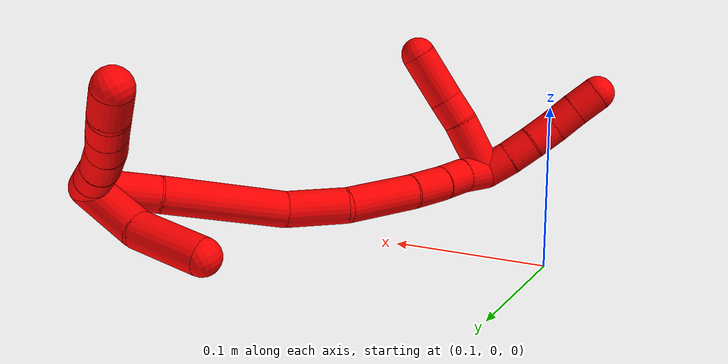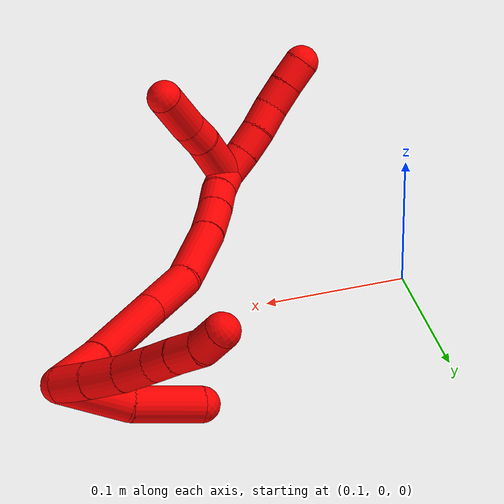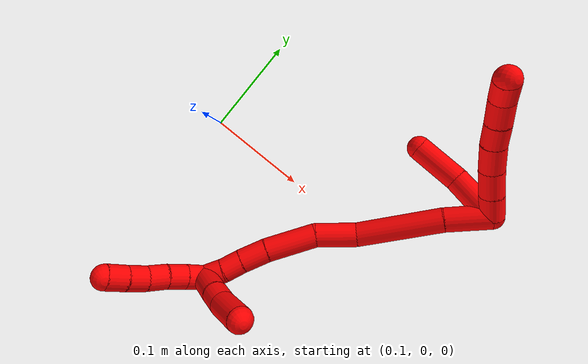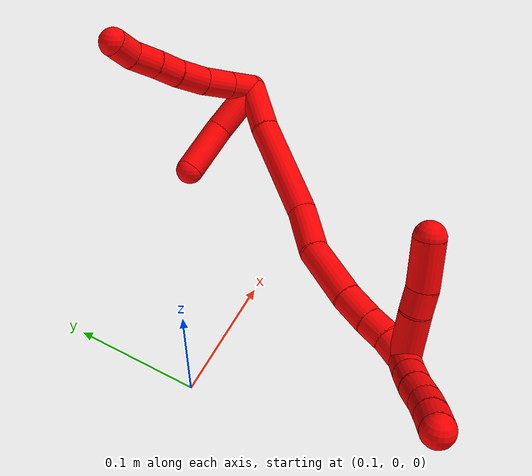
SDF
<sdf version="1.7">
 <world name="default">
  <model name="2">
   <static>0</static>
   <link name="2">
    <collision name="collision-cylinder-e_1_2_8">
     <pose>0.012391 -0.001172 -0.002377 2.68338 1.36007 2.58011</pose>
     <geometry><cylinder><radius>0.0125</radius><length>0.025342</length></cylinder></geometry>
     <surface>
      <friction><ode><mu>1.16</mu><mu2>1.16</mu2><slip1>0</slip1><slip2>0</slip2></ode></friction>
      <contact><ode><kp>1e+06</kp><kd>1</kd><max_vel>0</max_vel><min_depth>0.001</min_depth></ode></contact>
     </surface>
    </collision>
    <visual name="visual-cylinder-e_1_2_8">
     <pose>0.012391 -0.001172 -0.002377 2.68338 1.36007 2.58011</pose>
     <geometry><cylinder><radius>0.0125</radius><length>0.025342</length></cylinder></geometry>
     <material><ambient>1 0 0 1</ambient></material>
    </visual>
    <collision name="collision-cylinder-e_2_8_9">
     <pose>0.038326 -0.003983 -0.007566 2.61416 1.33503 2.48155</pose>
     <geometry><cylinder><radius>0.0125</radius><length>0.027861</length></cylinder></geometry>
     <surface>
      <friction><ode><mu>1.16</mu><mu2>1.16</mu2><slip1>0</slip1><slip2>0</slip2></ode></friction>
      <contact><ode><kp>1e+06</kp><kd>1</kd><max_vel>0</max_vel><min_depth>0.001</min_depth></ode></contact>
     </surface>
    </collision>
    <visual name="visual-cylinder-e_2_8_9">
     <pose>0.038326 -0.003983 -0.007566 2.61416 1.33503 2.48155</pose>
     <geometry><cylinder><radius>0.0125</radius><length>0.027861</length></cylinder></geometry>
     <material><ambient>1 0 0 1</ambient></material>
    </visual>
    <collision name="collision-cylinder-e_3_9_10">
     <pose>0.064982 -0.007592 -0.014833 2.72485 1.21501 2.5511</pose>
     <geometry><cylinder><radius>0.0125</radius><length>0.027974</length></cylinder></geometry>
     <surface>
      <friction><ode><mu>1.16</mu><mu2>1.16</mu2><slip1>0</slip1><slip2>0</slip2></ode></friction>
      <contact><ode><kp>1e+06</kp><kd>1</kd><max_vel>0</max_vel><min_depth>0.001</min_depth></ode></contact>
     </surface>
    </collision>
    <visual name="visual-cylinder-e_3_9_10">
     <pose>0.064982 -0.007592 -0.014833 2.72485 1.21501 2.5511</pose>
     <geometry><cylinder><radius>0.0125</radius><length>0.027974</length></cylinder></geometry>
     <material><ambient>1 0 0 1</ambient></material>
    </visual>
    <collision name="collision-cylinder-e_4_10_11">
     <pose>0.088242 -0.010436 -0.02378 2.94995 1.14721 2.84622</pose>
     <geometry><cylinder><radius>0.0125</radius><length>0.022266</length></cylinder></geometry>
     <surface>
      <friction><ode><mu>1.16</mu><mu2>1.16</mu2><slip1>0</slip1><slip2>0</slip2></ode></friction>
      <contact><ode><kp>1e+06</kp><kd>1</kd><max_vel>0</max_vel><min_depth>0.001</min_depth></ode></contact>
     </surface>
    </collision>
    <visual name="visual-cylinder-e_4_10_11">
     <pose>0.088242 -0.010436 -0.02378 2.94995 1.14721 2.84622</pose>
     <geometry><cylinder><radius>0.0125</radius><length>0.022266</length></cylinder></geometry>
     <material><ambient>1 0 0 1</ambient></material>
    </visual>
    <collision name="collision-cylinder-e_5_11_12">
     <pose>0.109671 -0.012162 -0.032648 2.94887 1.19439 2.8592</pose>
     <geometry><cylinder><radius>0.0125</radius><length>0.024259</length></cylinder></geometry>
     <surface>
      <friction><ode><mu>1.16</mu><mu2>1.16</mu2><slip1>0</slip1><slip2>0</slip2></ode></friction>
      <contact><ode><kp>1e+06</kp><kd>1</kd><max_vel>0</max_vel><min_depth>0.001</min_depth></ode></contact>
     </surface>
    </collision>
    <visual name="visual-cylinder-e_5_11_12">
     <pose>0.109671 -0.012162 -0.032648 2.94887 1.19439 2.8592</pose>
     <geometry><cylinder><radius>0.0125</radius><length>0.024259</length></cylinder></geometry>
     <material><ambient>1 0 0 1</ambient></material>
    </visual>
    <collision name="collision-cylinder-e_6_12_6">
     <pose>0.129773 -0.015797 -0.04325 2.72143 0.912688 2.32206</pose>
     <geometry><cylinder><radius>0.0125</radius><length>0.022299</length></cylinder></geometry>
     <surface>
      <friction><ode><mu>1.16</mu><mu2>1.16</mu2><slip1>0</slip1><slip2>0</slip2></ode></friction>
      <contact><ode><kp>1e+06</kp><kd>1</kd><max_vel>0</max_vel><min_depth>0.001</min_depth></ode></contact>
     </surface>
    </collision>
    <visual name="visual-cylinder-e_6_12_6">
     <pose>0.129773 -0.015797 -0.04325 2.72143 0.912688 2.32206</pose>
     <geometry><cylinder><radius>0.0125</radius><length>0.022299</length></cylinder></geometry>
     <material><ambient>1 0 0 1</ambient></material>
    </visual>
    <collision name="collision-cylinder-e_1_2_13">
     <pose>0.0173 -0.005052 0.017713 0.277816 0.754083 0.110611</pose>
     <geometry><cylinder><radius>0.0125</radius><length>0.05054</length></cylinder></geometry>
     <surface>
      <friction><ode><mu>1.16</mu><mu2>1.16</mu2><slip1>0</slip1><slip2>0</slip2></ode></friction>
      <contact><ode><kp>1e+06</kp><kd>1</kd><max_vel>0</max_vel><min_depth>0.001</min_depth></ode></contact>
     </surface>
    </collision>
    <visual name="visual-cylinder-e_1_2_13">
     <pose>0.0173 -0.005052 0.017713 0.277816 0.754083 0.110611</pose>
     <geometry><cylinder><radius>0.0125</radius><length>0.05054</length></cylinder></geometry>
     <material><ambient>1 0 0 1</ambient></material>
    </visual>
    <collision name="collision-cylinder-e_2_13_5">
     <pose>0.051572 -0.020506 0.050101 0.61667 0.756319 0.251724</pose>
     <geometry><cylinder><radius>0.0125</radius><length>0.04946</length></cylinder></geometry>
     <surface>
      <friction><ode><mu>1.16</mu><mu2>1.16</mu2><slip1>0</slip1><slip2>0</slip2></ode></friction>
      <contact><ode><kp>1e+06</kp><kd>1</kd><max_vel>0</max_vel><min_depth>0.001</min_depth></ode></contact>
     </surface>
    </collision>
    <visual name="visual-cylinder-e_2_13_5">
     <pose>0.051572 -0.020506 0.050101 0.61667 0.756319 0.251724</pose>
     <geometry><cylinder><radius>0.0125</radius><length>0.04946</length></cylinder></geometry>
     <material><ambient>1 0 0 1</ambient></material>
    </visual>
    <collision name="collision-cylinder-e_1_2_14">
     <pose>0.000491 -0.019001 0.01311 0.966835 0.021269 0.011166</pose>
     <geometry><cylinder><radius>0.0125</radius><length>0.04618</length></cylinder></geometry>
     <surface>
      <friction><ode><mu>1.16</mu><mu2>1.16</mu2><slip1>0</slip1><slip2>0</slip2></ode></friction>
      <contact><ode><kp>1e+06</kp><kd>1</kd><max_vel>0</max_vel><min_depth>0.001</min_depth></ode></contact>
     </surface>
    </collision>
    <visual name="visual-cylinder-e_1_2_14">
     <pose>0.000491 -0.019001 0.01311 0.966835 0.021269 0.011166</pose>
     <geometry><cylinder><radius>0.0125</radius><length>0.04618</length></cylinder></geometry>
     <material><ambient>1 0 0 1</ambient></material>
    </visual>
    <collision name="collision-cylinder-e_2_14_15">
     <pose>-0.003316 -0.074023 0.051841 0.95254 -0.096925 -0.05003</pose>
     <geometry><cylinder><radius>0.0125</radius><length>0.088823</length></cylinder></geometry>
     <surface>
      <friction><ode><mu>1.16</mu><mu2>1.16</mu2><slip1>0</slip1><slip2>0</slip2></ode></friction>
      <contact><ode><kp>1e+06</kp><kd>1</kd><max_vel>0</max_vel><min_depth>0.001</min_depth></ode></contact>
     </surface>
    </collision>
    <visual name="visual-cylinder-e_2_14_15">
     <pose>-0.003316 -0.074023 0.051841 0.95254 -0.096925 -0.05003</pose>
     <geometry><cylinder><radius>0.0125</radius><length>0.088823</length></cylinder></geometry>
     <material><ambient>1 0 0 1</ambient></material>
    </visual>
    <collision name="collision-cylinder-e_3_15_16">
     <pose>-0.004582 -0.129354 0.086522 1.13211 0.141184 0.0898</pose>
     <geometry><cylinder><radius>0.0125</radius><length>0.043089</length></cylinder></geometry>
     <surface>
      <friction><ode><mu>1.16</mu><mu2>1.16</mu2><slip1>0</slip1><slip2>0</slip2></ode></friction>
      <contact><ode><kp>1e+06</kp><kd>1</kd><max_vel>0</max_vel><min_depth>0.001</min_depth></ode></contact>
     </surface>
    </collision>
    <visual name="visual-cylinder-e_3_15_16">
     <pose>-0.004582 -0.129354 0.086522 1.13211 0.141184 0.0898</pose>
     <geometry><cylinder><radius>0.0125</radius><length>0.043089</length></cylinder></geometry>
     <material><ambient>1 0 0 1</ambient></material>
    </visual>
    <collision name="collision-cylinder-e_4_16_17">
     <pose>-0.004672 -0.173371 0.103786 1.25018 -0.119358 -0.086181</pose>
     <geometry><cylinder><radius>0.0125</radius><length>0.052438</length></cylinder></geometry>
     <surface>
      <friction><ode><mu>1.16</mu><mu2>1.16</mu2><slip1>0</slip1><slip2>0</slip2></ode></friction>
      <contact><ode><kp>1e+06</kp><kd>1</kd><max_vel>0</max_vel><min_depth>0.001</min_depth></ode></contact>
     </surface>
    </collision>
    <visual name="visual-cylinder-e_4_16_17">
     <pose>-0.004672 -0.173371 0.103786 1.25018 -0.119358 -0.086181</pose>
     <geometry><cylinder><radius>0.0125</radius><length>0.052438</length></cylinder></geometry>
     <material><ambient>1 0 0 1</ambient></material>
    </visual>
    <collision name="collision-cylinder-e_5_17_18">
     <pose>-0.010868 -0.211151 0.115642 1.29844 -0.222664 -0.169293</pose>
     <geometry><cylinder><radius>0.0125</radius><length>0.027837</length></cylinder></geometry>
     <surface>
      <friction><ode><mu>1.16</mu><mu2>1.16</mu2><slip1>0</slip1><slip2>0</slip2></ode></friction>
      <contact><ode><kp>1e+06</kp><kd>1</kd><max_vel>0</max_vel><min_depth>0.001</min_depth></ode></contact>
     </surface>
    </collision>
    <visual name="visual-cylinder-e_5_17_18">
     <pose>-0.010868 -0.211151 0.115642 1.29844 -0.222664 -0.169293</pose>
     <geometry><cylinder><radius>0.0125</radius><length>0.027837</length></cylinder></geometry>
     <material><ambient>1 0 0 1</ambient></material>
    </visual>
    <collision name="collision-cylinder-e_6_18_19">
     <pose>-0.016757 -0.233984 0.121436 1.35466 -0.274648 -0.221377</pose>
     <geometry><cylinder><radius>0.0125</radius><length>0.020759</length></cylinder></geometry>
     <surface>
      <friction><ode><mu>1.16</mu><mu2>1.16</mu2><slip1>0</slip1><slip2>0</slip2></ode></friction>
      <contact><ode><kp>1e+06</kp><kd>1</kd><max_vel>0</max_vel><min_depth>0.001</min_depth></ode></contact>
     </surface>
    </collision>
    <visual name="visual-cylinder-e_6_18_19">
     <pose>-0.016757 -0.233984 0.121436 1.35466 -0.274648 -0.221377</pose>
     <geometry><cylinder><radius>0.0125</radius><length>0.020759</length></cylinder></geometry>
     <material><ambient>1 0 0 1</ambient></material>
    </visual>
    <collision name="collision-cylinder-e_7_19_1">
     <pose>-0.021377 -0.25343 0.127013 1.2301 -0.173855 -0.122977</pose>
     <geometry><cylinder><radius>0.0125</radius><length>0.020873</length></cylinder></geometry>
     <surface>
      <friction><ode><mu>1.16</mu><mu2>1.16</mu2><slip1>0</slip1><slip2>0</slip2></ode></friction>
      <contact><ode><kp>1e+06</kp><kd>1</kd><max_vel>0</max_vel><min_depth>0.001</min_depth></ode></contact>
     </surface>
    </collision>
    <visual name="visual-cylinder-e_7_19_1">
     <pose>-0.021377 -0.25343 0.127013 1.2301 -0.173855 -0.122977</pose>
     <geometry><cylinder><radius>0.0125</radius><length>0.020873</length></cylinder></geometry>
     <material><ambient>1 0 0 1</ambient></material>
    </visual>
    <collision name="collision-cylinder-e_1_1_20">
     <pose>-0.019276 -0.272304 0.129848 1.636 0.40129 0.427557</pose>
     <geometry><cylinder><radius>0.0125</radius><length>0.02</length></cylinder></geometry>
     <surface>
      <friction><ode><mu>1.16</mu><mu2>1.16</mu2><slip1>0</slip1><slip2>0</slip2></ode></friction>
      <contact><ode><kp>1e+06</kp><kd>1</kd><max_vel>0</max_vel><min_depth>0.001</min_depth></ode></contact>
     </surface>
    </collision>
    <visual name="visual-cylinder-e_1_1_20">
     <pose>-0.019276 -0.272304 0.129848 1.636 0.40129 0.427557</pose>
     <geometry><cylinder><radius>0.0125</radius><length>0.02</length></cylinder></geometry>
     <material><ambient>1 0 0 1</ambient></material>
    </visual>
    <collision name="collision-cylinder-e_2_20_21">
     <pose>-0.011637 -0.290658 0.12783 1.72427 0.38262 0.444421</pose>
     <geometry><cylinder><radius>0.0125</radius><length>0.02</length></cylinder></geometry>
     <surface>
      <friction><ode><mu>1.16</mu><mu2>1.16</mu2><slip1>0</slip1><slip2>0</slip2></ode></friction>
      <contact><ode><kp>1e+06</kp><kd>1</kd><max_vel>0</max_vel><min_depth>0.001</min_depth></ode></contact>
     </surface>
    </collision>
    <visual name="visual-cylinder-e_2_20_21">
     <pose>-0.011637 -0.290658 0.12783 1.72427 0.38262 0.444421</pose>
     <geometry><cylinder><radius>0.0125</radius><length>0.02</length></cylinder></geometry>
     <material><ambient>1 0 0 1</ambient></material>
    </visual>
    <collision name="collision-cylinder-e_3_21_22">
     <pose>-0.005092 -0.309305 0.124915 1.72742 0.284946 0.332647</pose>
     <geometry><cylinder><radius>0.0125</radius><length>0.02</length></cylinder></geometry>
     <surface>
      <friction><ode><mu>1.16</mu><mu2>1.16</mu2><slip1>0</slip1><slip2>0</slip2></ode></friction>
      <contact><ode><kp>1e+06</kp><kd>1</kd><max_vel>0</max_vel><min_depth>0.001</min_depth></ode></contact>
     </surface>
    </collision>
    <visual name="visual-cylinder-e_3_21_22">
     <pose>-0.005092 -0.309305 0.124915 1.72742 0.284946 0.332647</pose>
     <geometry><cylinder><radius>0.0125</radius><length>0.02</length></cylinder></geometry>
     <material><ambient>1 0 0 1</ambient></material>
    </visual>
    <collision name="collision-cylinder-e_4_22_23">
     <pose>0.00181 -0.327626 0.121162 1.82064 0.421489 0.537406</pose>
     <geometry><cylinder><radius>0.0125</radius><length>0.02</length></cylinder></geometry>
     <surface>
      <friction><ode><mu>1.16</mu><mu2>1.16</mu2><slip1>0</slip1><slip2>0</slip2></ode></friction>
      <contact><ode><kp>1e+06</kp><kd>1</kd><max_vel>0</max_vel><min_depth>0.001</min_depth></ode></contact>
     </surface>
    </collision>
    <visual name="visual-cylinder-e_4_22_23">
     <pose>0.00181 -0.327626 0.121162 1.82064 0.421489 0.537406</pose>
     <geometry><cylinder><radius>0.0125</radius><length>0.02</length></cylinder></geometry>
     <material><ambient>1 0 0 1</ambient></material>
    </visual>
    <collision name="collision-cylinder-e_5_23_4">
     <pose>0.010256 -0.345264 0.116991 1.78513 0.450579 0.554235</pose>
     <geometry><cylinder><radius>0.0125</radius><length>0.02</length></cylinder></geometry>
     <surface>
      <friction><ode><mu>1.16</mu><mu2>1.16</mu2><slip1>0</slip1><slip2>0</slip2></ode></friction>
      <contact><ode><kp>1e+06</kp><kd>1</kd><max_vel>0</max_vel><min_depth>0.001</min_depth></ode></contact>
     </surface>
    </collision>
    <visual name="visual-cylinder-e_5_23_4">
     <pose>0.010256 -0.345264 0.116991 1.78513 0.450579 0.554235</pose>
     <geometry><cylinder><radius>0.0125</radius><length>0.02</length></cylinder></geometry>
     <material><ambient>1 0 0 1</ambient></material>
    </visual>
    <collision name="collision-cylinder-e_1_1_24">
     <pose>-0.023889 -0.263202 0.109881 3.13754 -0.034341 -2.90666</pose>
     <geometry><cylinder><radius>0.0125</radius><length>0.041159</length></cylinder></geometry>
     <surface>
      <friction><ode><mu>1.16</mu><mu2>1.16</mu2><slip1>0</slip1><slip2>0</slip2></ode></friction>
      <contact><ode><kp>1e+06</kp><kd>1</kd><max_vel>0</max_vel><min_depth>0.001</min_depth></ode></contact>
     </surface>
    </collision>
    <visual name="visual-cylinder-e_1_1_24">
     <pose>-0.023889 -0.263202 0.109881 3.13754 -0.034341 -2.90666</pose>
     <geometry><cylinder><radius>0.0125</radius><length>0.041159</length></cylinder></geometry>
     <material><ambient>1 0 0 1</ambient></material>
    </visual>
    <collision name="collision-cylinder-e_2_24_25">
     <pose>-0.026054 -0.262713 0.079408 -3.08386 -0.145925 2.38915</pose>
     <geometry><cylinder><radius>0.0125</radius><length>0.020058</length></cylinder></geometry>
     <surface>
      <friction><ode><mu>1.16</mu><mu2>1.16</mu2><slip1>0</slip1><slip2>0</slip2></ode></friction>
      <contact><ode><kp>1e+06</kp><kd>1</kd><max_vel>0</max_vel><min_depth>0.001</min_depth></ode></contact>
     </surface>
    </collision>
    <visual name="visual-cylinder-e_2_24_25">
     <pose>-0.026054 -0.262713 0.079408 -3.08386 -0.145925 2.38915</pose>
     <geometry><cylinder><radius>0.0125</radius><length>0.020058</length></cylinder></geometry>
     <material><ambient>1 0 0 1</ambient></material>
    </visual>
    <collision name="collision-cylinder-e_3_25_3">
     <pose>-0.027557 -0.260254 0.050202 -3.04417 -0.002304 0.04725</pose>
     <geometry><cylinder><radius>0.0125</radius><length>0.038783</length></cylinder></geometry>
     <surface>
      <friction><ode><mu>1.16</mu><mu2>1.16</mu2><slip1>0</slip1><slip2>0</slip2></ode></friction>
      <contact><ode><kp>1e+06</kp><kd>1</kd><max_vel>0</max_vel><min_depth>0.001</min_depth></ode></contact>
     </surface>
    </collision>
    <visual name="visual-cylinder-e_3_25_3">
     <pose>-0.027557 -0.260254 0.050202 -3.04417 -0.002304 0.04725</pose>
     <geometry><cylinder><radius>0.0125</radius><length>0.038783</length></cylinder></geometry>
     <material><ambient>1 0 0 1</ambient></material>
    </visual>
    <collision name="collision-sphere-3">
     <pose>-0.027601 -0.258368 0.030903 0 -0 0</pose>
     <geometry><sphere><radius>0.0125</radius></sphere></geometry>
     <surface>
      <friction><ode><mu>1.16</mu><mu2>1.16</mu2><slip1>0</slip1><slip2>0</slip2></ode></friction>
      <contact><ode><kp>1e+06</kp><kd>1</kd><max_vel>0</max_vel><min_depth>0.001</min_depth></ode></contact>
     </surface>
    </collision>
    <visual name="visual-sphere-3">
     <pose>-0.027601 -0.258368 0.030903 0 -0 0</pose>
     <geometry><sphere><radius>0.0125</radius></sphere></geometry>
     <material><ambient>1 0 0 1</ambient></material>
    </visual>
    <collision name="collision-sphere-25">
     <pose>-0.027512 -0.26214 0.069502 0 -0 0</pose>
     <geometry><sphere><radius>0.0125</radius></sphere></geometry>
     <surface>
      <friction><ode><mu>1.16</mu><mu2>1.16</mu2><slip1>0</slip1><slip2>0</slip2></ode></friction>
      <contact><ode><kp>1e+06</kp><kd>1</kd><max_vel>0</max_vel><min_depth>0.001</min_depth></ode></contact>
     </surface>
    </collision>
    <visual name="visual-sphere-25">
     <pose>-0.027512 -0.26214 0.069502 0 -0 0</pose>
     <geometry><sphere><radius>0.0125</radius></sphere></geometry>
     <material><ambient>1 0 0 1</ambient></material>
    </visual>
    <collision name="collision-sphere-24">
     <pose>-0.024595 -0.263285 0.089314 0 -0 0</pose>
     <geometry><sphere><radius>0.0125</radius></sphere></geometry>
     <surface>
      <friction><ode><mu>1.16</mu><mu2>1.16</mu2><slip1>0</slip1><slip2>0</slip2></ode></friction>
      <contact><ode><kp>1e+06</kp><kd>1</kd><max_vel>0</max_vel><min_depth>0.001</min_depth></ode></contact>
     </surface>
    </collision>
    <visual name="visual-sphere-24">
     <pose>-0.024595 -0.263285 0.089314 0 -0 0</pose>
     <geometry><sphere><radius>0.0125</radius></sphere></geometry>
     <material><ambient>1 0 0 1</ambient></material>
    </visual>
    <collision name="collision-sphere-4">
     <pose>0.014611 -0.35406 0.115077 0 -0 0</pose>
     <geometry><sphere><radius>0.0125</radius></sphere></geometry>
     <surface>
      <friction><ode><mu>1.16</mu><mu2>1.16</mu2><slip1>0</slip1><slip2>0</slip2></ode></friction>
      <contact><ode><kp>1e+06</kp><kd>1</kd><max_vel>0</max_vel><min_depth>0.001</min_depth></ode></contact>
     </surface>
    </collision>
    <visual name="visual-sphere-4">
     <pose>0.014611 -0.35406 0.115077 0 -0 0</pose>
     <geometry><sphere><radius>0.0125</radius></sphere></geometry>
     <material><ambient>1 0 0 1</ambient></material>
    </visual>
    <collision name="collision-sphere-23">
     <pose>0.005901 -0.336468 0.118906 0 -0 0</pose>
     <geometry><sphere><radius>0.0125</radius></sphere></geometry>
     <surface>
      <friction><ode><mu>1.16</mu><mu2>1.16</mu2><slip1>0</slip1><slip2>0</slip2></ode></friction>
      <contact><ode><kp>1e+06</kp><kd>1</kd><max_vel>0</max_vel><min_depth>0.001</min_depth></ode></contact>
     </surface>
    </collision>
    <visual name="visual-sphere-23">
     <pose>0.005901 -0.336468 0.118906 0 -0 0</pose>
     <geometry><sphere><radius>0.0125</radius></sphere></geometry>
     <material><ambient>1 0 0 1</ambient></material>
    </visual>
    <collision name="collision-sphere-22">
     <pose>-0.002281 -0.318785 0.123418 0 -0 0</pose>
     <geometry><sphere><radius>0.0125</radius></sphere></geometry>
     <surface>
      <friction><ode><mu>1.16</mu><mu2>1.16</mu2><slip1>0</slip1><slip2>0</slip2></ode></friction>
      <contact><ode><kp>1e+06</kp><kd>1</kd><max_vel>0</max_vel><min_depth>0.001</min_depth></ode></contact>
     </surface>
    </collision>
    <visual name="visual-sphere-22">
     <pose>-0.002281 -0.318785 0.123418 0 -0 0</pose>
     <geometry><sphere><radius>0.0125</radius></sphere></geometry>
     <material><ambient>1 0 0 1</ambient></material>
    </visual>
    <collision name="collision-sphere-21">
     <pose>-0.007903 -0.299826 0.126412 0 -0 0</pose>
     <geometry><sphere><radius>0.0125</radius></sphere></geometry>
     <surface>
      <friction><ode><mu>1.16</mu><mu2>1.16</mu2><slip1>0</slip1><slip2>0</slip2></ode></friction>
      <contact><ode><kp>1e+06</kp><kd>1</kd><max_vel>0</max_vel><min_depth>0.001</min_depth></ode></contact>
     </surface>
    </collision>
    <visual name="visual-sphere-21">
     <pose>-0.007903 -0.299826 0.126412 0 -0 0</pose>
     <geometry><sphere><radius>0.0125</radius></sphere></geometry>
     <material><ambient>1 0 0 1</ambient></material>
    </visual>
    <collision name="collision-sphere-20">
     <pose>-0.01537 -0.28149 0.129248 0 -0 0</pose>
     <geometry><sphere><radius>0.0125</radius></sphere></geometry>
     <surface>
      <friction><ode><mu>1.16</mu><mu2>1.16</mu2><slip1>0</slip1><slip2>0</slip2></ode></friction>
      <contact><ode><kp>1e+06</kp><kd>1</kd><max_vel>0</max_vel><min_depth>0.001</min_depth></ode></contact>
     </surface>
    </collision>
    <visual name="visual-sphere-20">
     <pose>-0.01537 -0.28149 0.129248 0 -0 0</pose>
     <geometry><sphere><radius>0.0125</radius></sphere></geometry>
     <material><ambient>1 0 0 1</ambient></material>
    </visual>
    <collision name="collision-sphere-12">
     <pose>0.120952 -0.013016 -0.037024 0 -0 0</pose>
     <geometry><sphere><radius>0.0125</radius></sphere></geometry>
     <surface>
      <friction><ode><mu>1.16</mu><mu2>1.16</mu2><slip1>0</slip1><slip2>0</slip2></ode></friction>
      <contact><ode><kp>1e+06</kp><kd>1</kd><max_vel>0</max_vel><min_depth>0.001</min_depth></ode></contact>
     </surface>
    </collision>
    <visual name="visual-sphere-12">
     <pose>0.120952 -0.013016 -0.037024 0 -0 0</pose>
     <geometry><sphere><radius>0.0125</radius></sphere></geometry>
     <material><ambient>1 0 0 1</ambient></material>
    </visual>
    <collision name="collision-sphere-11">
     <pose>0.098391 -0.011308 -0.028272 0 -0 0</pose>
     <geometry><sphere><radius>0.0125</radius></sphere></geometry>
     <surface>
      <friction><ode><mu>1.16</mu><mu2>1.16</mu2><slip1>0</slip1><slip2>0</slip2></ode></friction>
      <contact><ode><kp>1e+06</kp><kd>1</kd><max_vel>0</max_vel><min_depth>0.001</min_depth></ode></contact>
     </surface>
    </collision>
    <visual name="visual-sphere-11">
     <pose>0.098391 -0.011308 -0.028272 0 -0 0</pose>
     <geometry><sphere><radius>0.0125</radius></sphere></geometry>
     <material><ambient>1 0 0 1</ambient></material>
    </visual>
    <collision name="collision-sphere-10">
     <pose>0.078093 -0.009565 -0.019288 0 -0 0</pose>
     <geometry><sphere><radius>0.0125</radius></sphere></geometry>
     <surface>
      <friction><ode><mu>1.16</mu><mu2>1.16</mu2><slip1>0</slip1><slip2>0</slip2></ode></friction>
      <contact><ode><kp>1e+06</kp><kd>1</kd><max_vel>0</max_vel><min_depth>0.001</min_depth></ode></contact>
     </surface>
    </collision>
    <visual name="visual-sphere-10">
     <pose>0.078093 -0.009565 -0.019288 0 -0 0</pose>
     <geometry><sphere><radius>0.0125</radius></sphere></geometry>
     <material><ambient>1 0 0 1</ambient></material>
    </visual>
    <collision name="collision-sphere-9">
     <pose>0.051871 -0.00562 -0.010377 0 -0 0</pose>
     <geometry><sphere><radius>0.0125</radius></sphere></geometry>
     <surface>
      <friction><ode><mu>1.16</mu><mu2>1.16</mu2><slip1>0</slip1><slip2>0</slip2></ode></friction>
      <contact><ode><kp>1e+06</kp><kd>1</kd><max_vel>0</max_vel><min_depth>0.001</min_depth></ode></contact>
     </surface>
    </collision>
    <visual name="visual-sphere-9">
     <pose>0.051871 -0.00562 -0.010377 0 -0 0</pose>
     <geometry><sphere><radius>0.0125</radius></sphere></geometry>
     <material><ambient>1 0 0 1</ambient></material>
    </visual>
    <collision name="collision-sphere-2">
     <geometry><sphere><radius>0.0125</radius></sphere></geometry>
     <surface>
      <friction><ode><mu>1.16</mu><mu2>1.16</mu2><slip1>0</slip1><slip2>0</slip2></ode></friction>
      <contact><ode><kp>1e+06</kp><kd>1</kd><max_vel>0</max_vel><min_depth>0.001</min_depth></ode></contact>
     </surface>
    </collision>
    <visual name="visual-sphere-2">
     <geometry><sphere><radius>0.0125</radius></sphere></geometry>
     <material><ambient>1 0 0 1</ambient></material>
    </visual>
    <collision name="collision-sphere-19">
     <pose>-0.019572 -0.243742 0.123579 0 -0 0</pose>
     <geometry><sphere><radius>0.0125</radius></sphere></geometry>
     <surface>
      <friction><ode><mu>1.16</mu><mu2>1.16</mu2><slip1>0</slip1><slip2>0</slip2></ode></friction>
      <contact><ode><kp>1e+06</kp><kd>1</kd><max_vel>0</max_vel><min_depth>0.001</min_depth></ode></contact>
     </surface>
    </collision>
    <visual name="visual-sphere-19">
     <pose>-0.019572 -0.243742 0.123579 0 -0 0</pose>
     <geometry><sphere><radius>0.0125</radius></sphere></geometry>
     <material><ambient>1 0 0 1</ambient></material>
    </visual>
    <collision name="collision-sphere-8">
     <pose>0.024781 -0.002345 -0.004754 0 -0 0</pose>
     <geometry><sphere><radius>0.0125</radius></sphere></geometry>
     <surface>
      <friction><ode><mu>1.16</mu><mu2>1.16</mu2><slip1>0</slip1><slip2>0</slip2></ode></friction>
      <contact><ode><kp>1e+06</kp><kd>1</kd><max_vel>0</max_vel><min_depth>0.001</min_depth></ode></contact>
     </surface>
    </collision>
    <visual name="visual-sphere-8">
     <pose>0.024781 -0.002345 -0.004754 0 -0 0</pose>
     <geometry><sphere><radius>0.0125</radius></sphere></geometry>
     <material><ambient>1 0 0 1</ambient></material>
    </visual>
    <collision name="collision-sphere-6">
     <pose>0.138593 -0.018579 -0.049476 0 -0 0</pose>
     <geometry><sphere><radius>0.0125</radius></sphere></geometry>
     <surface>
      <friction><ode><mu>1.16</mu><mu2>1.16</mu2><slip1>0</slip1><slip2>0</slip2></ode></friction>
      <contact><ode><kp>1e+06</kp><kd>1</kd><max_vel>0</max_vel><min_depth>0.001</min_depth></ode></contact>
     </surface>
    </collision>
    <visual name="visual-sphere-6">
     <pose>0.138593 -0.018579 -0.049476 0 -0 0</pose>
     <geometry><sphere><radius>0.0125</radius></sphere></geometry>
     <material><ambient>1 0 0 1</ambient></material>
    </visual>
    <collision name="collision-sphere-13">
     <pose>0.034601 -0.010103 0.035426 0 -0 0</pose>
     <geometry><sphere><radius>0.0125</radius></sphere></geometry>
     <surface>
      <friction><ode><mu>1.16</mu><mu2>1.16</mu2><slip1>0</slip1><slip2>0</slip2></ode></friction>
      <contact><ode><kp>1e+06</kp><kd>1</kd><max_vel>0</max_vel><min_depth>0.001</min_depth></ode></contact>
     </surface>
    </collision>
    <visual name="visual-sphere-13">
     <pose>0.034601 -0.010103 0.035426 0 -0 0</pose>
     <geometry><sphere><radius>0.0125</radius></sphere></geometry>
     <material><ambient>1 0 0 1</ambient></material>
    </visual>
    <collision name="collision-sphere-5">
     <pose>0.068543 -0.030909 0.064775 0 -0 0</pose>
     <geometry><sphere><radius>0.0125</radius></sphere></geometry>
     <surface>
      <friction><ode><mu>1.16</mu><mu2>1.16</mu2><slip1>0</slip1><slip2>0</slip2></ode></friction>
      <contact><ode><kp>1e+06</kp><kd>1</kd><max_vel>0</max_vel><min_depth>0.001</min_depth></ode></contact>
     </surface>
    </collision>
    <visual name="visual-sphere-5">
     <pose>0.068543 -0.030909 0.064775 0 -0 0</pose>
     <geometry><sphere><radius>0.0125</radius></sphere></geometry>
     <material><ambient>1 0 0 1</ambient></material>
    </visual>
    <collision name="collision-sphere-14">
     <pose>0.000982 -0.038002 0.02622 0 -0 0</pose>
     <geometry><sphere><radius>0.0125</radius></sphere></geometry>
     <surface>
      <friction><ode><mu>1.16</mu><mu2>1.16</mu2><slip1>0</slip1><slip2>0</slip2></ode></friction>
      <contact><ode><kp>1e+06</kp><kd>1</kd><max_vel>0</max_vel><min_depth>0.001</min_depth></ode></contact>
     </surface>
    </collision>
    <visual name="visual-sphere-14">
     <pose>0.000982 -0.038002 0.02622 0 -0 0</pose>
     <geometry><sphere><radius>0.0125</radius></sphere></geometry>
     <material><ambient>1 0 0 1</ambient></material>
    </visual>
    <collision name="collision-sphere-15">
     <pose>-0.007614 -0.110043 0.077462 0 -0 0</pose>
     <geometry><sphere><radius>0.0125</radius></sphere></geometry>
     <surface>
      <friction><ode><mu>1.16</mu><mu2>1.16</mu2><slip1>0</slip1><slip2>0</slip2></ode></friction>
      <contact><ode><kp>1e+06</kp><kd>1</kd><max_vel>0</max_vel><min_depth>0.001</min_depth></ode></contact>
     </surface>
    </collision>
    <visual name="visual-sphere-15">
     <pose>-0.007614 -0.110043 0.077462 0 -0 0</pose>
     <geometry><sphere><radius>0.0125</radius></sphere></geometry>
     <material><ambient>1 0 0 1</ambient></material>
    </visual>
    <collision name="collision-sphere-16">
     <pose>-0.00155 -0.148665 0.095582 0 -0 0</pose>
     <geometry><sphere><radius>0.0125</radius></sphere></geometry>
     <surface>
      <friction><ode><mu>1.16</mu><mu2>1.16</mu2><slip1>0</slip1><slip2>0</slip2></ode></friction>
      <contact><ode><kp>1e+06</kp><kd>1</kd><max_vel>0</max_vel><min_depth>0.001</min_depth></ode></contact>
     </surface>
    </collision>
    <visual name="visual-sphere-16">
     <pose>-0.00155 -0.148665 0.095582 0 -0 0</pose>
     <geometry><sphere><radius>0.0125</radius></sphere></geometry>
     <material><ambient>1 0 0 1</ambient></material>
    </visual>
    <collision name="collision-sphere-17">
     <pose>-0.007794 -0.198077 0.11199 0 -0 0</pose>
     <geometry><sphere><radius>0.0125</radius></sphere></geometry>
     <surface>
      <friction><ode><mu>1.16</mu><mu2>1.16</mu2><slip1>0</slip1><slip2>0</slip2></ode></friction>
      <contact><ode><kp>1e+06</kp><kd>1</kd><max_vel>0</max_vel><min_depth>0.001</min_depth></ode></contact>
     </surface>
    </collision>
    <visual name="visual-sphere-17">
     <pose>-0.007794 -0.198077 0.11199 0 -0 0</pose>
     <geometry><sphere><radius>0.0125</radius></sphere></geometry>
     <material><ambient>1 0 0 1</ambient></material>
    </visual>
    <collision name="collision-sphere-18">
     <pose>-0.013942 -0.224226 0.119294 0 -0 0</pose>
     <geometry><sphere><radius>0.0125</radius></sphere></geometry>
     <surface>
      <friction><ode><mu>1.16</mu><mu2>1.16</mu2><slip1>0</slip1><slip2>0</slip2></ode></friction>
      <contact><ode><kp>1e+06</kp><kd>1</kd><max_vel>0</max_vel><min_depth>0.001</min_depth></ode></contact>
     </surface>
    </collision>
    <visual name="visual-sphere-18">
     <pose>-0.013942 -0.224226 0.119294 0 -0 0</pose>
     <geometry><sphere><radius>0.0125</radius></sphere></geometry>
     <material><ambient>1 0 0 1</ambient></material>
    </visual>
    <collision name="collision-sphere-1">
     <pose>-0.023182 -0.263118 0.130448 0 -0 0</pose>
     <geometry><sphere><radius>0.0125</radius></sphere></geometry>
     <surface>
      <friction><ode><mu>1.16</mu><mu2>1.16</mu2><slip1>0</slip1><slip2>0</slip2></ode></friction>
      <contact><ode><kp>1e+06</kp><kd>1</kd><max_vel>0</max_vel><min_depth>0.001</min_depth></ode></contact>
     </surface>
    </collision>
    <visual name="visual-sphere-1">
     <pose>-0.023182 -0.263118 0.130448 0 -0 0</pose>
     <geometry><sphere><radius>0.0125</radius></sphere></geometry>
     <material><ambient>1 0 0 1</ambient></material>
    </visual>
    <inertial>
     <pose>0.012373 -0.130325 0.058201 0 -0 0</pose>
     <mass>0.75</mass>
     <inertia><ixx>0.000138</ixx><ixy>0</ixy><ixz>0</ixz><iyy>6.3e-05</iyy><iyz>0</iyz><izz>7.8e-05</izz></inertia>
    </inertial>
   </link>
   <pose>0.372826 0.096203 0.040853 -2.7405 -0.258282 2.40722</pose>
  </model>
 </world>
</sdf>
